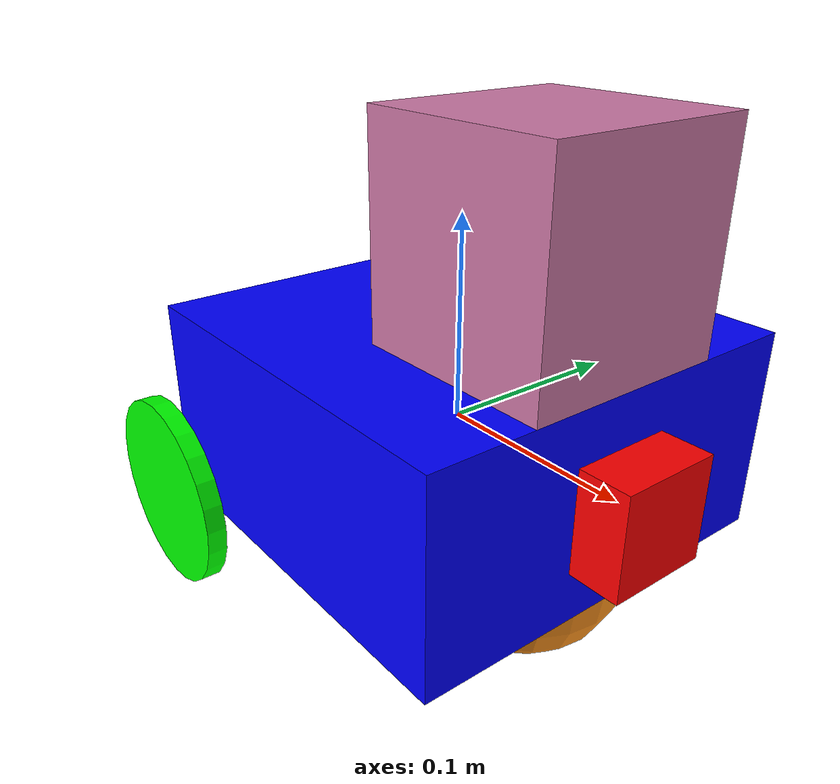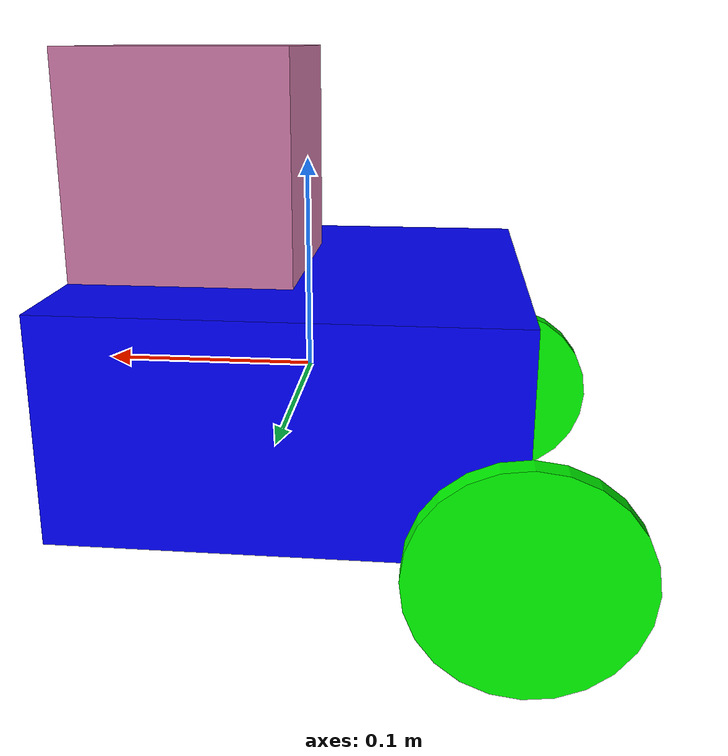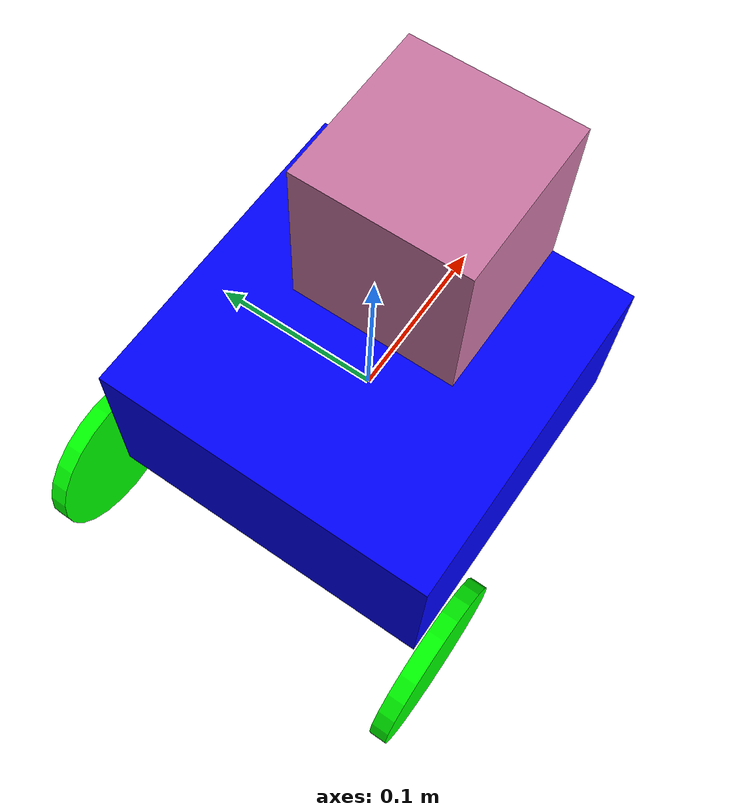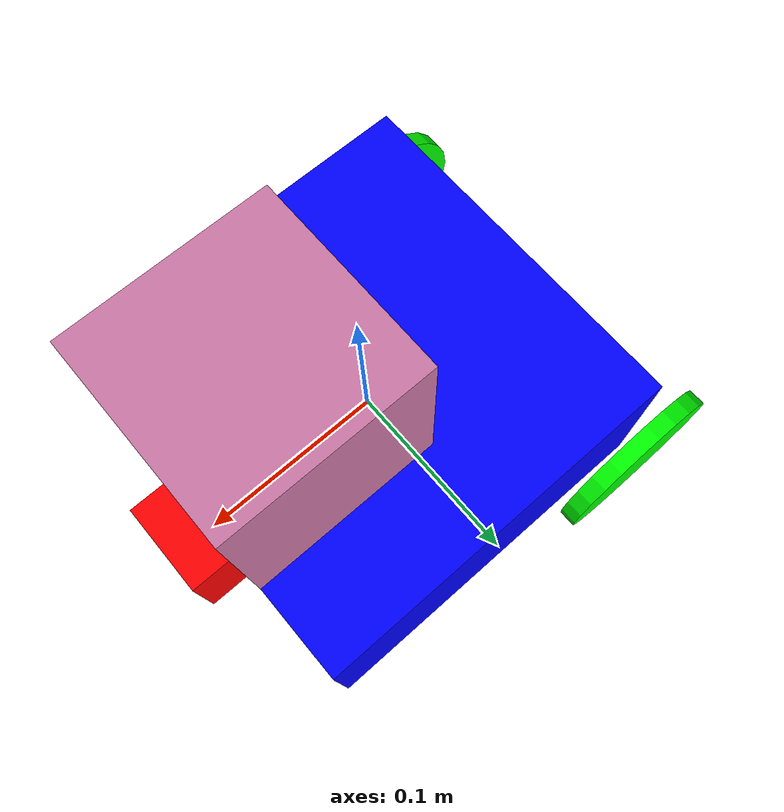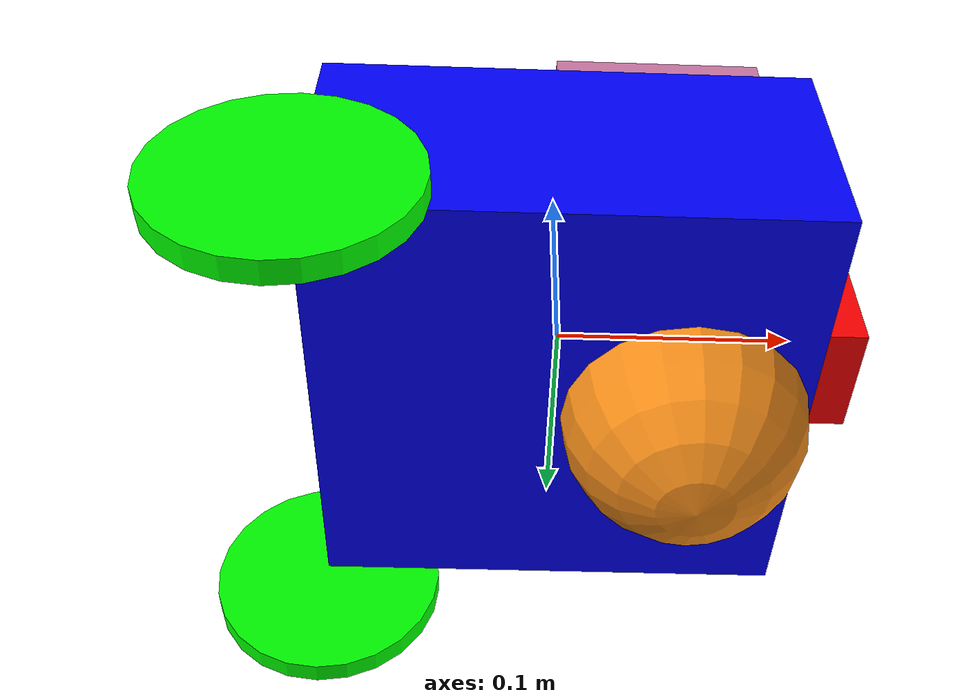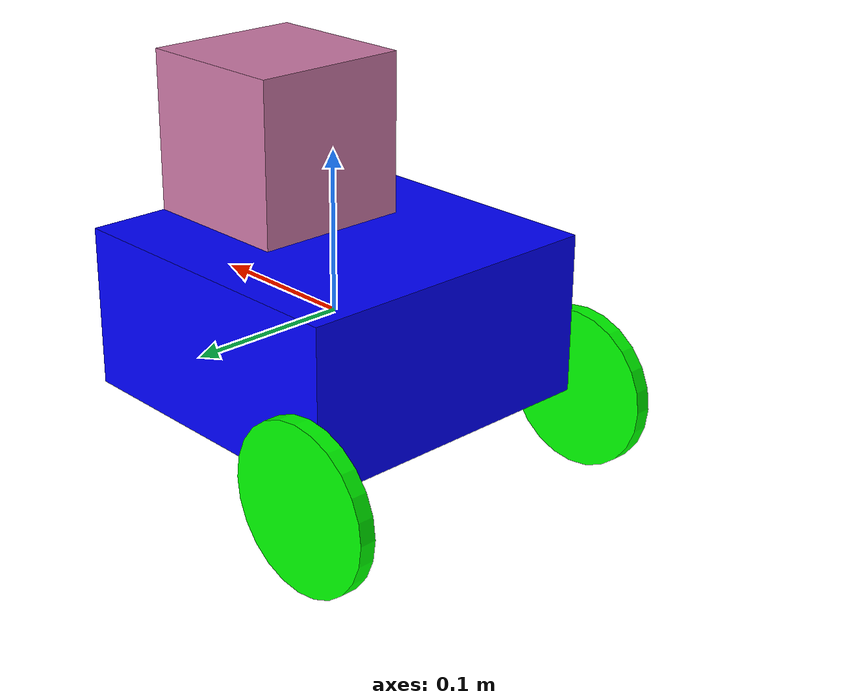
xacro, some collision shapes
<?xml version='1.0'?>

<robot name="my_robot" xmlns:xacro="http://www.ros.org/wiki/xacro">

 <xacro:include filename="$(find my_robot)/urdf/my_robot.gazebo"/>

  <link name="robot_footprint"></link>

  <joint name="robot_footprint_joint" type="fixed">
    <origin xyz="0 0 0" rpy="0 0 0" />
    <parent link="robot_footprint"/>
    <child link="chassis" />
  </joint>

  <link name='chassis'>
    <pose>0 0 0.1 0 0 0</pose>

    <inertial name="chassis_visual">
      <mass value="15.0"/>
      <origin xyz="0.0 0 0" rpy=" 0 0 0"/>
      <inertia
          ixx="0.1" ixy="0" ixz="0"
          iyy="0.1" iyz="0"
          izz="0.1"/>
    </inertial>

    <collision name='chassis_collision'>
      <origin xyz="0 0 0" rpy=" 0 0 0"/>
      <geometry>
        <box size=".2 .2 .1"/>
      </geometry>
    </collision>

    <visual name='chassis_visual'>
      <origin xyz="0 0 0" rpy=" 0 0 0"/>
      <geometry>
        <box size=".2 .2 .1"/>
      </geometry>
    <material name="blue">
    <color rgba="0 0 1.0 1.0" />
    </material>
    </visual>

    <collision name='front_caster_collision'>
      <origin xyz="0.05 0 -0.05" rpy=" 0 0 0"/>
      <geometry>
        <sphere radius="0.0499"/>
      </geometry>
    </collision>

    <visual name='front_caster_visual'>
      <origin xyz="0.05 0 -0.05" rpy=" 0 0 0"/>
      <geometry>
        <sphere radius="0.05"/>
      </geometry>
    </visual>

  </link>

  <link name="left_wheel">
  <inertial name="left_wheel_inertial">
  <mass value="5.0"/>
  <origin xyz="0 0 0" rpy="0.0 1.5707 1.5707"/>
  <inertia ixx="0.1" ixy="0" ixz="0" iyy="0.1" iyz="0" izz="0.1"/>
  </inertial>

  <collision name="left_wheel_collision">
  <origin xyz="0 0 0" rpy="0.0 1.5707 1.5707"/>
  <geometry>
  <cylinder  radius="0.05" length="0.01" />
  </geometry>
  </collision>

  <visual name="left_wheel_visual">
  <origin xyz="0 0 0" rpy="0.0 1.5707 1.5707"/>
  <geometry>
  <cylinder  radius="0.05" length="0.01" />
  </geometry>
  <material name="Green">
    <color rgba="0 1 0 1" />
  </material>
  </visual>
  </link>

  <link name="right_wheel">

  <inertial name="right_wheel_inertial">
  <mass value="5.0"/>
  <origin xyz="0 0 0" rpy="0.0 1.5707 1.5707"/>
  <inertia ixx="0.1" ixy="0" ixz="0" iyy="0.1" iyz="0" izz="0.1"/>
  </inertial>

  <collision name="right_wheel_collision">
  <origin xyz="0 0 0" rpy="0.0 1.5707 1.5707"/>
  <geometry>
  <cylinder  radius="0.05" length="0.01" />
  </geometry>
  </collision>

  <visual>
  <origin xyz="0 0 0" rpy="0.0 1.5707 1.5707"/>
  <geometry>
  <cylinder  radius="0.05" length="0.01" />
  </geometry>
  <material name="Green">
    <color rgba="0 1 0 1" />
  </material>
  </visual>
  </link>

<link name="camera" >
<inertial>
<mass value="0.1"/>
<origin xyz="0 0 0" rpy="0 0 0"/>
<inertia ixx="1e-6" ixy="0" ixz="0" iyy="1e-6" iyz="0" izz="1e-6" />
</inertial>

<collision name="camera_collision">
<origin xyz="0 0 0" rpy="0 0 0"/>
<geometry>
<box size="0.05 0.05 0.05"/>
</geometry>
</collision>

<visual name="camera_visual">
<origin xyz="0 0 0" rpy="0 0 0"/>
<geometry>
<box size="0.05 0.05 0.05"/>
</geometry>
<material name="Red">
    <color rgba="1 0 0 1" />
</material>
</visual>
</link>

<joint name="camera_optical_joint" type="fixed">
    <origin xyz="0 0 0" rpy="-1.5707 0 -1.5707"/>

    <!-- camera link -->
    <parent link="camera"/>

    <child link="camera_link_optical"/>
  </joint>

  <link name="camera_link_optical">
  </link>

<link name="hokuyo">
<inertial>
<mass value="1e-5"/>
<origin xyz="0 0 0" rpy="0 0 0"/>
<inertia ixx="1e-6" ixy="0" ixz="0" iyy="1e-6" iyz="0" izz="1e-6" />
</inertial>

<collision>
<origin xyz="0 0 0" rpy="0 0 0"/>
<geometry>
<box size="0.1 0.1 0.1"/>
</geometry>
</collision>

<visual>
<origin xyz="0 0 0" rpy="0 0 0"/>
<geometry>
<mesh filename ="package://my_robot/meshes/hokuyo.dae" scale="1 1 1"/>
</geometry>
</visual>
</link>

<joint type="fixed" name="hokuyo_joint">
<origin xyz="0.05 0 0.1" rpy="0 0 0"/>
<parent link="chassis"/>
<child link="hokuyo"/>
<axis xyz="0 1 0"/>
</joint>

<joint type="fixed" name="camera_joint">
<origin xyz="0.1 0 0" rpy="0 0 0" />
<parent link="chassis"/>
<child link="camera" />
<axis xyz="0 1 0" />
</joint>

<joint type="continuous" name="right_wheel_hinge">
<origin xyz="-0.1 -0.11 -0.05" rpy="0 0 0" />
<child link="right_wheel" />
<parent link="chassis" />
<axis xyz="0 1 0" />
<limit effort="10000" velocity="1000" />
<dynamics damping="1.0" friction="1.0" />
</joint>

<joint type="continuous" name="left_wheel_hinge">
<origin xyz="-0.1 0.11 -0.05" rpy="0 0 0" />
<child link="left_wheel" />
<parent link="chassis" />
<axis xyz="0 1 0"/>
<limit effort="10000" velocity="1000" />
<dynamics damping="1.0" friction="1.0" />
</joint>

<material name="Blue">
    <color rgba="0.0 0.0 0.8 1.0"/>
  </material>

  <material name="Green">
    <color rgba="0.0 0.8 0.0 1.0"/>
  </material>

  <material name="Grey">
    <color rgba="0.7 0.7 0.7 1.0"/>
  </material>

  <material name="Grey2">
    <color rgba="0.9 0.9 0.9 1.0"/>
  </material>

  <material name="Red">
    <color rgba="0.8 0.0 0.0 1.0"/>
  </material>

  <material name="White">
    <color rgba="1.0 1.0 1.0 1.0"/>
  </material>

  <material name="Black">
    <color rgba="0.1 0.1 0.1 1.0"/>
  </material>

  <material name="LightGrey">
    <color rgba="0.6 0.6 0.6 1.0"/>
  </material>

  <material name="Orange">
    <color rgba="1.0 0.33 0.0 1.0"/>
  </material>

<gazebo reference="left_wheel">
<material>Gazebo/Green</material>
</gazebo>
<gazebo reference="right_wheel">
<material>Gazebo/Green</material>
</gazebo>
<gazebo reference="camera">
<material>Gazebo/Blue</material>
</gazebo>
<gazebo reference="chassis">
<material>Gazebo/Orange</material>
</gazebo>

</robot>
